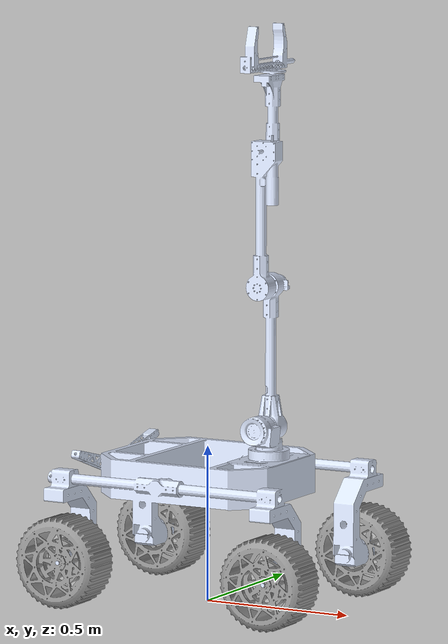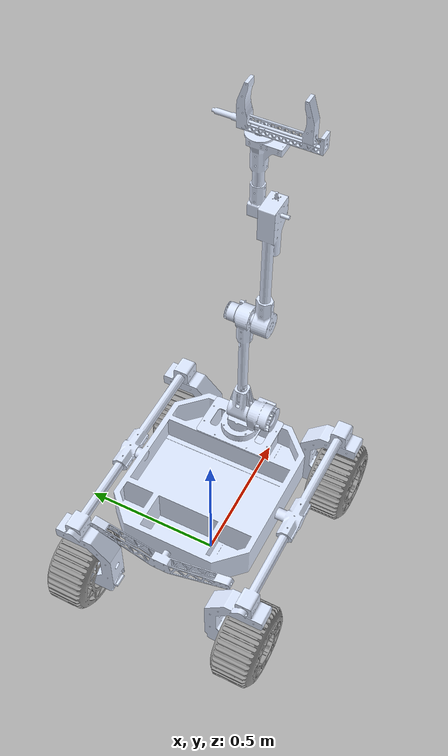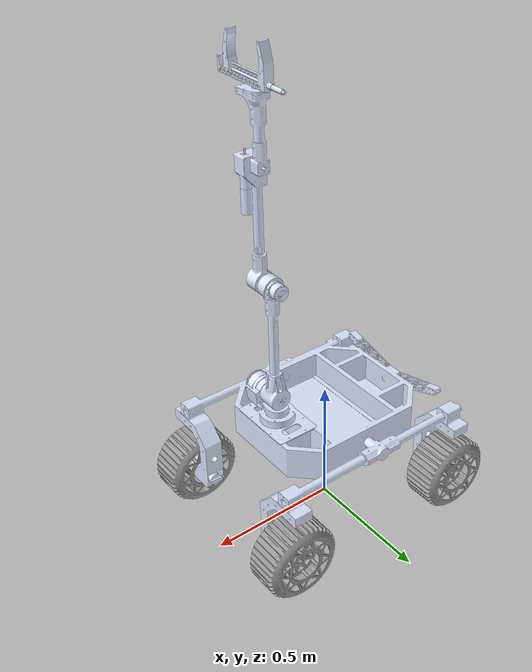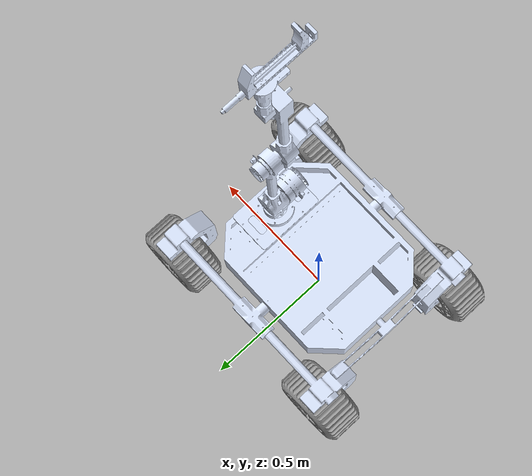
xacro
<?xml version="1.0"?>
<robot name="mi_rover_tesis" xmlns:xacro="http://ros.org/wiki/xacro">

  <xacro:arg name="montadas" default="5"/>
  <xacro:arg name="escala_masa" default="1.0"/>
  <xacro:property name="montadas" value="$(arg montadas)"/>

  <!-- INCLUDES PRINCIPALES -->
  <xacro:include filename="$(find mi_rover_description)/urdf/chasis.urdf" />
  <xacro:include filename="$(find mi_rover_description)/urdf/wheel.xacro" />

  <!-- LLANTAS -->
  <xacro:llanta prefijo="delantera_izq" x="0.3937" y="0.315" z="0.15" roll="0" pitch="0" yaw="3.1416" />
  <xacro:llanta prefijo="delantera_der" x="0.3937" y="-0.315" z="0.15" roll="0" pitch="0" yaw="0" />
  <xacro:llanta prefijo="trasera_izq" x="-0.3437" y="0.315" z="0.15" roll="0" pitch="0" yaw="3.1416" />
  <xacro:llanta prefijo="trasera_der" x="-0.3437" y="-0.315" z="0.15" roll="0" pitch="0" yaw="0" />

  <!-- INCLUIR EL BRAZO -->
  <!-- brazo_gz.urdf.xacro se genera de brazo.urdf con scripts/generar_brazo_gz.py -->
  <xacro:include filename="$(find mi_rover_description)/urdf/brazo_gz.urdf.xacro" />

  <!-- UNION FIJA CHASIS-BRAZO -->
  <joint name="chasis_a_brazo_joint" type="fixed">
    <parent link="Chasis"/>
    <child link="base"/>
    <origin xyz="0.22 0.0 0.475" rpy="0 0 0"/>
  </joint>

  <!-- SENSOR IMU -->
  <gazebo>
    <plugin filename="gz-sim-imu-system" name="gz::sim::systems::Imu"/>
  </gazebo>
  <gazebo reference="Chasis">
    <sensor name="sensor_imu_chasis" type="imu">
      <always_on>true</always_on>
      <update_rate>50</update_rate>
      <topic>/imu_data</topic>
      <gz_frame_id>Chasis</gz_frame_id>
    </sensor>
  </gazebo>

  <!-- PLUGIN DE CONDUCCIÓN DIFFERENCIAL -->
  <gazebo>
    <plugin filename="gz-sim-diff-drive-system" name="gz::sim::systems::DiffDrive">
      <left_joint>delantera_izq_wheel_joint</left_joint>
      <left_joint>trasera_izq_wheel_joint</left_joint>
      <right_joint>delantera_der_wheel_joint</right_joint>
      <right_joint>trasera_der_wheel_joint</right_joint>
      <wheel_separation>0.63</wheel_separation>
      <wheel_radius>0.15</wheel_radius>
      <topic>/cmd_vel</topic>
    </plugin>
  </gazebo>

  <!-- PUBLICADOR DE ESTADOS -->
  <gazebo>
    <!-- 200 Hz = frecuencia del lazo ADRC. A 50 Hz la medición llega con
         hasta 20 ms de retraso y el lazo (observador a 50 rad/s) se vuelve
         inestable, sobre todo con el brazo estirado. -->
    <plugin filename="gz-sim-joint-state-publisher-system" name="gz::sim::systems::JointStatePublisher">
      <update_rate>200</update_rate>
      <joint_name>Joint_1</joint_name>
      <xacro:if value="${montadas >= 2}"><joint_name>Joint_2</joint_name></xacro:if>
      <xacro:if value="${montadas >= 3}"><joint_name>Joint_3</joint_name></xacro:if>
      <xacro:if value="${montadas >= 4}"><joint_name>Joint_4</joint_name></xacro:if>
      <xacro:if value="${montadas >= 5}"><joint_name>Joint_5</joint_name></xacro:if>
    </plugin>
  </gazebo>

  <!-- POSTURA INICIAL DEL BRAZO (se aplica una sola vez, sin control) -->
  <gazebo>
    <plugin filename="mi_rover_initial_pose" name="mi_rover::InitialJointPositions">
      <joint name="Joint_1">3.1415</joint>
      <xacro:if value="${montadas >= 2}"><joint name="Joint_2">-1.5707</joint></xacro:if>
      <xacro:if value="${montadas >= 3}"><joint name="Joint_3">0.0</joint></xacro:if>
      <xacro:if value="${montadas >= 4}"><joint name="Joint_4">0.0</joint></xacro:if>
    </plugin>
  </gazebo>

<!-- CONTROL DE TORQUE PURO (una por articulación montada) -->
  <gazebo>
    <plugin filename="gz-sim-apply-joint-force-system" name="gz::sim::systems::ApplyJointForce">
      <joint_name>Joint_1</joint_name>
    </plugin>
    <xacro:if value="${montadas >= 2}">
    <plugin filename="gz-sim-apply-joint-force-system" name="gz::sim::systems::ApplyJointForce">
      <joint_name>Joint_2</joint_name>
    </plugin>
    </xacro:if>
    <xacro:if value="${montadas >= 3}">
    <plugin filename="gz-sim-apply-joint-force-system" name="gz::sim::systems::ApplyJointForce">
      <joint_name>Joint_3</joint_name>
    </plugin>
    </xacro:if>
    <xacro:if value="${montadas >= 4}">
    <plugin filename="gz-sim-apply-joint-force-system" name="gz::sim::systems::ApplyJointForce">
      <joint_name>Joint_4</joint_name>
    </plugin>
    </xacro:if>
    <xacro:if value="${montadas >= 5}">
    <plugin filename="gz-sim-apply-joint-force-system" name="gz::sim::systems::ApplyJointForce">
      <joint_name>Joint_5</joint_name>
    </plugin>
    </xacro:if>
  </gazebo>

  <!-- FRICCIÓN DE LAS LLANTAS (Para que el rover se ancle al piso) -->
  <gazebo reference="delantera_izq_wheel">
    <mu1>1.5</mu1>
    <mu2>1.5</mu2>
  </gazebo>

  <gazebo reference="delantera_der_wheel">
    <mu1>1.5</mu1>
    <mu2>1.5</mu2>
  </gazebo>

  <gazebo reference="trasera_izq_wheel">
    <mu1>1.5</mu1>
    <mu2>1.5</mu2>
  </gazebo>

  <gazebo reference="trasera_der_wheel">
    <mu1>1.5</mu1>
    <mu2>1.5</mu2>
  </gazebo>

</robot>

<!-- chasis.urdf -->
<robot
  name="Chasis">
  <link
    name="Chasis">
    <inertial>
      <origin
        xyz="0.00287143193569343 -4.813753470066E-05 -0.0263492882039757"
        rpy="0 0 0" />
      <mass
        value="40" />
      <inertia
        ixx="0.146289539269788"
        ixy="3.02994365528667E-07"
        ixz="-1.07213467744308E-05"
        iyy="0.183011006714277"
        iyz="1.00631494503253E-06"
        izz="0.266509383427871" />
    </inertial>
    <visual>
      <origin
        xyz="-0.396 -0.38 0.114"
        rpy="1.5708 0 1.5708" />
      <geometry>
        <mesh
          filename="package://mi_rover_description/meshes/Chasis/Chasis.STL" scale="0.001 0.001 0.001" />
      </geometry>
      <material
        name="gris">
        <color
          rgba="0.866666666666667 0.909803921568627 1 1" />
      </material>
    </visual>
    <collision>
      <origin
         xyz="-0.395 -0.38 0.114"
        rpy="1.5708 0 1.5708" />
      <geometry>
        <mesh
          filename="package://mi_rover_description/meshes/Chasis/Chasis.STL" scale="0.001 0.001 0.001" />
      </geometry>
    </collision>
  </link>
</robot>

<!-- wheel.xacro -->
<robot xmlns:xacro="http://ros.org/wiki/xacro">

  <xacro:macro name="llanta" params="prefijo x y z roll pitch yaw">
    <joint name="${prefijo}_wheel_joint" type="continuous">
      <parent link="Chasis"/>
      <child link="${prefijo}_wheel_link"/>
      <origin xyz="${x} ${y} ${z}" rpy="${roll} ${pitch} ${yaw}"/>
      <axis xyz="0 1 0"/>
      <dynamics damping="5.0" friction="5.0"/>
    </joint>

    <link name="${prefijo}_wheel_link">
      <inertial>
        <origin xyz="0 0 0" rpy="0 0 0" />
        <mass value="3.0" />
        <inertia ixx="0.01" ixy="0" ixz="0" iyy="0.01" iyz="0" izz="0.01" />
      </inertial>
      <visual>
        <origin xyz="0 0 0" rpy="1.5708 0 0" />
        <geometry>
          <mesh filename="package://mi_rover_description/meshes/Wheel/wheel.STL" />
        </geometry>
        <material name="negro_llanta">
          <color rgba="0.6 0.6 0.6 1.0"/>
        </material>
      </visual>
      <collision>
        <origin xyz="0 0 0" rpy="1.5708 0 0" />
        <geometry>
          <mesh filename="package://mi_rover_description/meshes/Wheel/wheel.STL" />
        </geometry>
      </collision>
    </link>

  </xacro:macro>
</robot>

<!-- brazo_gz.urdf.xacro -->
<!-- GENERADO por scripts/generar_brazo_gz.py a partir de brazo.urdf. No editar a mano. -->
<robot xmlns:xacro="http://ros.org/wiki/xacro" name="brazo_2">
  <xacro:arg name="montadas" default="5"/>
  <xacro:arg name="escala_masa" default="1.0"/>
  <xacro:property name="montadas" value="$(arg montadas)"/>
  <xacro:property name="em" value="$(arg escala_masa)"/>
  <link name="base">
      <inertial>
        <origin xyz="1.39958423819865E-17 -4.11946375579782E-18 0.00933047710244957" rpy="0 0 0" />
        <mass value="0.594564150366253" />
        <inertia ixx="0.00220226641592648" ixy="3.38152256422411E-18" ixz="4.20144212304877E-18" iyy="0.00121595685384765" iyz="-4.68252440232623E-20" izz="0.00341204275167526" />
      </inertial>
      <visual>
        <origin xyz="0 0 0" rpy="0 0 0" />
        <geometry>
          <mesh filename="package://mi_rover_description/meshes/Brazo/base.STL" />
        </geometry>
        <material name="">
          <color rgba="0.866666666666667 0.909803921568627 1 1" />
        </material>
      </visual>
      <collision>
        <origin xyz="0 0 0" rpy="0 0 0" />
        <geometry>
          <mesh filename="package://mi_rover_description/meshes/Brazo/base.STL" />
        </geometry>
      </collision>
    </link>
  <xacro:if value="${montadas >= 1}">
  <link name="Link_1">
      <inertial>
        <origin xyz="0.00830108225016004 -0.0424137581999083 0.0474326767417051" rpy="0 0 0" />
        <mass value="${1.05857299570185 * em}" />
        <inertia ixx="${0.00117937368473566 * em}" ixy="${0.000121093366641107 * em}" ixz="${-5.0011054142264e-05 * em}" iyy="${0.00108030167307535 * em}" iyz="${0.000222958830256965 * em}" izz="${0.00122776170114691 * em}" />
      </inertial>
      <visual>
        <origin xyz="0 0 0" rpy="0 0 0" />
        <geometry>
          <mesh filename="package://mi_rover_description/meshes/Brazo/Link_1.STL" />
        </geometry>
        <material name="">
          <color rgba="0.866666666666667 0.909803921568627 1 1" />
        </material>
      </visual>
      <collision>
        <origin xyz="0 0 0" rpy="0 0 0" />
        <geometry>
          <mesh filename="package://mi_rover_description/meshes/Brazo/Link_1.STL" />
        </geometry>
      </collision>
    </link>
  </xacro:if>
  <xacro:if value="${montadas >= 1}">
  <joint name="Joint_1" type="continuous">
      <origin xyz="0 0 0.03" rpy="0 0 0" />
      <parent link="base" />
      <child link="Link_1" />
      <axis xyz="0 0 -1" />

      <limit effort="33.6" velocity="1.23" />
      <dynamics damping="1.0" friction="0.05" />
    </joint>
  </xacro:if>
  <xacro:if value="${montadas >= 2}">
  <link name="Link_2">
      <inertial>
        <origin xyz="0.000220391421112707 -0.254806409007157 -0.0333451288978256" rpy="0 0 0" />
        <mass value="${0.975920981532861 * em}" />
        <inertia ixx="${0.004422283964783726 * em}" ixy="${-1.56952710811249e-07 * em}" ixz="${6.90748814042608e-07 * em}" iyy="${0.000500378936927172 * em}" iyz="${-6.94997343328116e-05 * em}" izz="${0.00434360107285825 * em}" />
      </inertial>
      <visual>
        <origin xyz="0 0 0" rpy="0 0 0" />
        <geometry>
          <mesh filename="package://mi_rover_description/meshes/Brazo/Link_2.STL" />
        </geometry>
        <material name="">
          <color rgba="0.866666666666667 0.909803921568627 1 1" />
        </material>
      </visual>
      <collision>
        <origin xyz="0 0 0" rpy="0 0 0" />
        <geometry>
          <mesh filename="package://mi_rover_description/meshes/Brazo/Link_2.STL" />
        </geometry>
      </collision>
    </link>
  </xacro:if>
  <xacro:if value="${montadas >= 2}">
  <joint name="Joint_2" type="continuous">
      <origin xyz="0.00625 0.03585 0.0742" rpy="-1.5708 0 0" />
      <parent link="Link_1" />
      <child link="Link_2" />
      <axis xyz="0 0 1" />

      <limit effort="37.0" velocity="3.67" />
      <dynamics damping="1.5" friction="0.05" />
    </joint>
  </xacro:if>
  <xacro:if value="${montadas >= 3}">
  <link name="Link_3">
      <inertial>
        <origin xyz="0.00963941202063687 0.22529482981309 -0.0257004642867256" rpy="0 0 0" />
        <mass value="${1.38441974915215 * em}" />
        <inertia ixx="${0.00469817934353504 * em}" ixy="${-7.39032612536994e-05 * em}" ixz="${-6.1207409739754e-10 * em}" iyy="${0.000705603188859499 * em}" iyz="${9.4891068778738e-06 * em}" izz="${0.00493184594226307 * em}" />
      </inertial>
      <visual>
        <origin xyz="0 0 0" rpy="0 0 0" />
        <geometry>
          <mesh filename="package://mi_rover_description/meshes/Brazo/Link_3.STL" />
        </geometry>
        <material name="">
          <color rgba="0.866666666666667 0.909803921568627 1 1" />
        </material>
      </visual>
      <collision>
        <origin xyz="0 0 0" rpy="0 0 0" />
        <geometry>
          <mesh filename="package://mi_rover_description/meshes/Brazo/Link_3.STL" />
        </geometry>
      </collision>
    </link>
  </xacro:if>
  <xacro:if value="${montadas >= 3}">
  <joint name="Joint_3" type="revolute">
      <origin xyz="0 -0.45045 -0.12605" rpy="-3.1416 0 0" />
      <parent link="Link_2" />
      <child link="Link_3" />
      <axis xyz="0 0 -1" />

      <limit lower="-3.1416" upper="3.1416" effort="37.0" velocity="3.67" />
      <dynamics damping="1.0" friction="0.05" />
    </joint>
  </xacro:if>
  <xacro:if value="${montadas >= 4}">
  <link name="Link_4">
      <inertial>
        <origin xyz="1.76664695372697E-09 -0.138606750179293 -0.0118359865270931" rpy="0 0 0" />
        <mass value="${0.581802983405437 * em}" />
        <inertia ixx="${0.000825785251805779 * em}" ixy="${5.80528547944091e-12 * em}" ixz="${-5.18791287355876e-12 * em}" iyy="${0.000352010267825656 * em}" iyz="${-2.10784198231409e-05 * em}" izz="${0.000702088208596816 * em}" />
      </inertial>
      <visual>
        <origin xyz="0 0 0" rpy="0 0 0" />
        <geometry>
          <mesh filename="package://mi_rover_description/meshes/Brazo/Link_4.STL" />
        </geometry>
        <material name="">
          <color rgba="0.866666666666667 0.909803921568627 1 1" />
        </material>
      </visual>
      <collision>
        <origin xyz="0 0 0" rpy="0 0 0" />
        <geometry>
          <mesh filename="package://mi_rover_description/meshes/Brazo/Link_4.STL" />
        </geometry>
      </collision>
    </link>
  </xacro:if>
  <xacro:if value="${montadas >= 4}">
  <joint name="Joint_4" type="revolute">
      <origin xyz="0.016 0.4295 -0.0771" rpy="3.1416 0 0" />
      <parent link="Link_3" />
      <child link="Link_4" />
      <axis xyz="0 0 1" />

      <limit lower="-3.1416" upper="3.1416" effort="33.6" velocity="1.23" />
      <dynamics damping="1.0" friction="0.05" />
    </joint>
  </xacro:if>
  <xacro:if value="${montadas >= 5}">
  <link name="Link_5">
      <inertial>
        <origin xyz="7.2400814162682E-07 -0.0433430287718577 0.051471065456673" rpy="0 0 0" />
        <mass value="${0.406894631004107 * em}" />
        <inertia ixx="${0.00110776348915288 * em}" ixy="${7.11315522530653e-10 * em}" ixz="${2.12955056598781e-10 * em}" iyy="${0.000500975324315308 * em}" iyz="${-9.82929624587456e-05 * em}" izz="${0.000691088095582475 * em}" />
      </inertial>
      <visual>
        <origin xyz="0 0 0" rpy="0 0 0" />
        <geometry>
          <mesh filename="package://mi_rover_description/meshes/Brazo/Link_5.STL" />
        </geometry>
        <material name="">
          <color rgba="0.866666666666667 0.909803921568627 1 1" />
        </material>
      </visual>
      <collision>
        <origin xyz="0 0 0" rpy="0 0 0" />
        <geometry>
          <mesh filename="package://mi_rover_description/meshes/Brazo/Link_5.STL" />
        </geometry>
      </collision>
    </link>
  </xacro:if>
  <xacro:if value="${montadas >= 5}">
  <joint name="Joint_5" type="continuous">
      <origin xyz="0 -0.2475 -0.0057" rpy="1.5708 0 0" />
      <parent link="Link_4" />
      <child link="Link_5" />
      <axis xyz="0 0 1" />
      <limit effort="6.0" velocity="6.28" />
      <dynamics damping="0.5" friction="0.01" />
    </joint>
  </xacro:if>
</robot>
